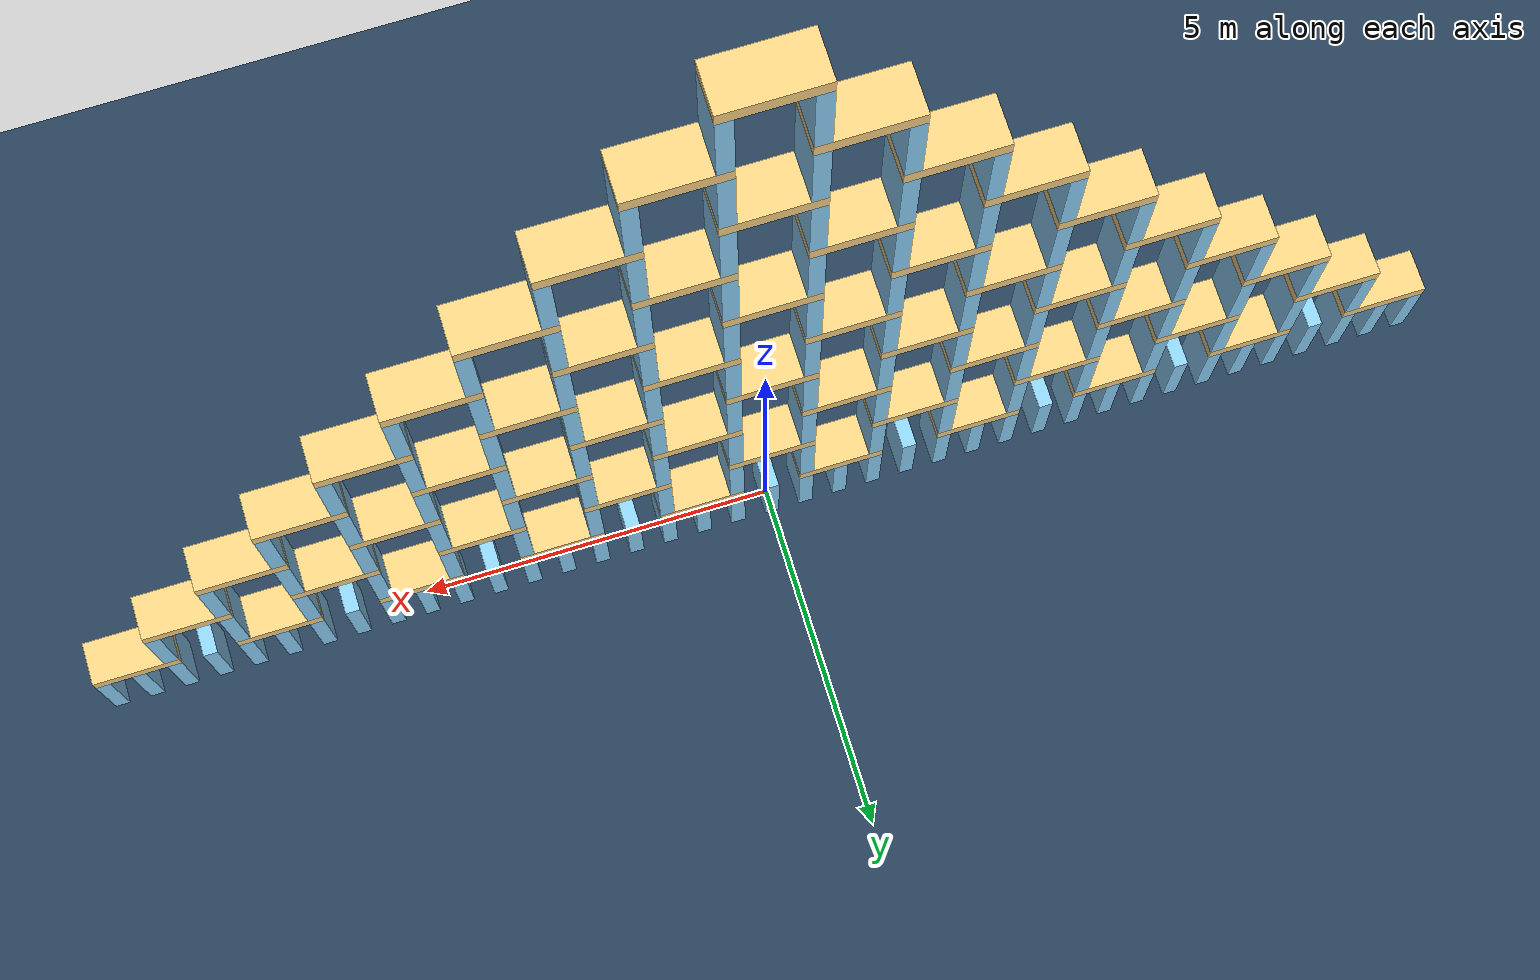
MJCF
<mujoco>
  <visual>
    <headlight diffuse="0.6 0.6 0.6" ambient="0.1 0.1 0.1" specular="0 0 0"/>
    <rgba haze="0.15 0.25 0.35 1"/>
    <global azimuth="120" elevation="-20"/>
  </visual>
  <asset>
    <texture type="skybox" builtin="gradient" rgb1="0.3 0.5 0.7" rgb2="0 0 0" width="512" height="3072"/>
    <texture type="2d" name="groundplane" builtin="checker" mark="edge" rgb1="0.2 0.3 0.4" rgb2="0.1 0.2 0.3" markrgb="0.8 0.8 0.8" width="300" height="300"/>
    <material name="groundplane" texture="groundplane" texuniform="true" texrepeat="5 5" reflectance="0.2"/>
  </asset>
  <worldbody>
    <light pos="0 0 1.5" dir="0 0 -1" directional="true"/>
    <geom name="floor" size="0 0 0.05" type="plane" material="groundplane"/>
    <body pos="0.5000000000000001 0 0.6000000000000001" euler="0 0 0">
      <geom type="box" size="0.1 0.30000000000000004  0.6000000000000001" rgba="0.5647058823529412 0.8352941176470589 1 1"/>
      <freejoint/>
    </body>
    <body pos="-0.5000000000000001 0 0.6000000000000001" euler="0 0 0">
      <geom type="box" size="0.1 0.30000000000000004  0.6000000000000001" rgba="0.5647058823529412 0.8352941176470589 1 1"/>
      <freejoint/>
    </body>
    <body pos="0 0 0.6000000000000001" euler="0 0 0">
      <geom type="box" size="0.1 0.30000000000000004  0.6000000000000001" rgba="0.5647058823529412 0.8352941176470589 1 1"/>
      <freejoint/>
    </body>
    <body pos="1.5000000000000002 0 0.6000000000000001" euler="0 0 0">
      <geom type="box" size="0.1 0.30000000000000004  0.6000000000000001" rgba="0.5647058823529412 0.8352941176470589 1 1"/>
      <freejoint/>
    </body>
    <body pos="-1.5000000000000002 0 0.6000000000000001" euler="0 0 0">
      <geom type="box" size="0.1 0.30000000000000004  0.6000000000000001" rgba="0.5647058823529412 0.8352941176470589 1 1"/>
      <freejoint/>
    </body>
    <body pos="1.0000000000000002 0 0.6000000000000001" euler="0 0 0">
      <geom type="box" size="0.1 0.30000000000000004  0.6000000000000001" rgba="0.5647058823529412 0.8352941176470589 1 1"/>
      <freejoint/>
    </body>
    <body pos="-1.0000000000000002 0 0.6000000000000001" euler="0 0 0">
      <geom type="box" size="0.1 0.30000000000000004  0.6000000000000001" rgba="0.5647058823529412 0.8352941176470589 1 1"/>
      <freejoint/>
    </body>
    <body pos="2.5000000000000004 0 0.6000000000000001" euler="0 0 0">
      <geom type="box" size="0.1 0.30000000000000004  0.6000000000000001" rgba="0.5647058823529412 0.8352941176470589 1 1"/>
      <freejoint/>
    </body>
    <body pos="-2.5000000000000004 0 0.6000000000000001" euler="0 0 0">
      <geom type="box" size="0.1 0.30000000000000004  0.6000000000000001" rgba="0.5647058823529412 0.8352941176470589 1 1"/>
      <freejoint/>
    </body>
    <body pos="2.0000000000000004 0 0.6000000000000001" euler="0 0 0">
      <geom type="box" size="0.1 0.30000000000000004  0.6000000000000001" rgba="0.5647058823529412 0.8352941176470589 1 1"/>
      <freejoint/>
    </body>
    <body pos="-2.0000000000000004 0 0.6000000000000001" euler="0 0 0">
      <geom type="box" size="0.1 0.30000000000000004  0.6000000000000001" rgba="0.5647058823529412 0.8352941176470589 1 1"/>
      <freejoint/>
    </body>
    <body pos="3.500000000000001 0 0.6000000000000001" euler="0 0 0">
      <geom type="box" size="0.1 0.30000000000000004  0.6000000000000001" rgba="0.5647058823529412 0.8352941176470589 1 1"/>
      <freejoint/>
    </body>
    <body pos="-3.500000000000001 0 0.6000000000000001" euler="0 0 0">
      <geom type="box" size="0.1 0.30000000000000004  0.6000000000000001" rgba="0.5647058823529412 0.8352941176470589 1 1"/>
      <freejoint/>
    </body>
    <body pos="3.000000000000001 0 0.6000000000000001" euler="0 0 0">
      <geom type="box" size="0.1 0.30000000000000004  0.6000000000000001" rgba="0.5647058823529412 0.8352941176470589 1 1"/>
      <freejoint/>
    </body>
    <body pos="-3.000000000000001 0 0.6000000000000001" euler="0 0 0">
      <geom type="box" size="0.1 0.30000000000000004  0.6000000000000001" rgba="0.5647058823529412 0.8352941176470589 1 1"/>
      <freejoint/>
    </body>
    <body pos="4.500000000000002 0 0.6000000000000001" euler="0 0 0">
      <geom type="box" size="0.1 0.30000000000000004  0.6000000000000001" rgba="0.5647058823529412 0.8352941176470589 1 1"/>
      <freejoint/>
    </body>
    <body pos="-4.500000000000002 0 0.6000000000000001" euler="0 0 0">
      <geom type="box" size="0.1 0.30000000000000004  0.6000000000000001" rgba="0.5647058823529412 0.8352941176470589 1 1"/>
      <freejoint/>
    </body>
    <body pos="4.000000000000001 0 0.6000000000000001" euler="0 0 0">
      <geom type="box" size="0.1 0.30000000000000004  0.6000000000000001" rgba="0.5647058823529412 0.8352941176470589 1 1"/>
      <freejoint/>
    </body>
    <body pos="-4.000000000000001 0 0.6000000000000001" euler="0 0 0">
      <geom type="box" size="0.1 0.30000000000000004  0.6000000000000001" rgba="0.5647058823529412 0.8352941176470589 1 1"/>
      <freejoint/>
    </body>
    <body pos="5.500000000000002 0 0.6000000000000001" euler="0 0 0">
      <geom type="box" size="0.1 0.30000000000000004  0.6000000000000001" rgba="0.5647058823529412 0.8352941176470589 1 1"/>
      <freejoint/>
    </body>
    <body pos="-5.500000000000002 0 0.6000000000000001" euler="0 0 0">
      <geom type="box" size="0.1 0.30000000000000004  0.6000000000000001" rgba="0.5647058823529412 0.8352941176470589 1 1"/>
      <freejoint/>
    </body>
    <body pos="5.000000000000001 0 0.6000000000000001" euler="0 0 0">
      <geom type="box" size="0.1 0.30000000000000004  0.6000000000000001" rgba="0.5647058823529412 0.8352941176470589 1 1"/>
      <freejoint/>
    </body>
    <body pos="-5.000000000000001 0 0.6000000000000001" euler="0 0 0">
      <geom type="box" size="0.1 0.30000000000000004  0.6000000000000001" rgba="0.5647058823529412 0.8352941176470589 1 1"/>
      <freejoint/>
    </body>
    <body pos="6.500000000000002 0 0.6000000000000001" euler="0 0 0">
      <geom type="box" size="0.1 0.30000000000000004  0.6000000000000001" rgba="0.5647058823529412 0.8352941176470589 1 1"/>
      <freejoint/>
    </body>
    <body pos="-6.500000000000002 0 0.6000000000000001" euler="0 0 0">
      <geom type="box" size="0.1 0.30000000000000004  0.6000000000000001" rgba="0.5647058823529412 0.8352941176470589 1 1"/>
      <freejoint/>
    </body>
    <body pos="6.000000000000001 0 0.6000000000000001" euler="0 0 0">
      <geom type="box" size="0.1 0.30000000000000004  0.6000000000000001" rgba="0.5647058823529412 0.8352941176470589 1 1"/>
      <freejoint/>
    </body>
    <body pos="-6.000000000000001 0 0.6000000000000001" euler="0 0 0">
      <geom type="box" size="0.1 0.30000000000000004  0.6000000000000001" rgba="0.5647058823529412 0.8352941176470589 1 1"/>
      <freejoint/>
    </body>
    <body pos="7.500000000000002 0 0.6000000000000001" euler="0 0 0">
      <geom type="box" size="0.1 0.30000000000000004  0.6000000000000001" rgba="0.5647058823529412 0.8352941176470589 1 1"/>
      <freejoint/>
    </body>
    <body pos="-7.500000000000002 0 0.6000000000000001" euler="0 0 0">
      <geom type="box" size="0.1 0.30000000000000004  0.6000000000000001" rgba="0.5647058823529412 0.8352941176470589 1 1"/>
      <freejoint/>
    </body>
    <body pos="7.000000000000001 0 0.6000000000000001" euler="0 0 0">
      <geom type="box" size="0.1 0.30000000000000004  0.6000000000000001" rgba="0.5647058823529412 0.8352941176470589 1 1"/>
      <freejoint/>
    </body>
    <body pos="-7.000000000000001 0 0.6000000000000001" euler="0 0 0">
      <geom type="box" size="0.1 0.30000000000000004  0.6000000000000001" rgba="0.5647058823529412 0.8352941176470589 1 1"/>
      <freejoint/>
    </body>
    <body pos="8.500000000000002 0 0.6000000000000001" euler="0 0 0">
      <geom type="box" size="0.1 0.30000000000000004  0.6000000000000001" rgba="0.5647058823529412 0.8352941176470589 1 1"/>
      <freejoint/>
    </body>
    <body pos="-8.500000000000002 0 0.6000000000000001" euler="0 0 0">
      <geom type="box" size="0.1 0.30000000000000004  0.6000000000000001" rgba="0.5647058823529412 0.8352941176470589 1 1"/>
      <freejoint/>
    </body>
    <body pos="8.000000000000002 0 0.6000000000000001" euler="0 0 0">
      <geom type="box" size="0.1 0.30000000000000004  0.6000000000000001" rgba="0.5647058823529412 0.8352941176470589 1 1"/>
      <freejoint/>
    </body>
    <body pos="-8.000000000000002 0 0.6000000000000001" euler="0 0 0">
      <geom type="box" size="0.1 0.30000000000000004  0.6000000000000001" rgba="0.5647058823529412 0.8352941176470589 1 1"/>
      <freejoint/>
    </body>
    <body pos="9.500000000000002 0 0.6000000000000001" euler="0 0 0">
      <geom type="box" size="0.1 0.30000000000000004  0.6000000000000001" rgba="0.5647058823529412 0.8352941176470589 1 1"/>
      <freejoint/>
    </body>
    <body pos="-9.500000000000002 0 0.6000000000000001" euler="0 0 0">
      <geom type="box" size="0.1 0.30000000000000004  0.6000000000000001" rgba="0.5647058823529412 0.8352941176470589 1 1"/>
      <freejoint/>
    </body>
    <body pos="9.000000000000002 0 0.6000000000000001" euler="0 0 0">
      <geom type="box" size="0.1 0.30000000000000004  0.6000000000000001" rgba="0.5647058823529412 0.8352941176470589 1 1"/>
      <freejoint/>
    </body>
    <body pos="-9.000000000000002 0 0.6000000000000001" euler="0 0 0">
      <geom type="box" size="0.1 0.30000000000000004  0.6000000000000001" rgba="0.5647058823529412 0.8352941176470589 1 1"/>
      <freejoint/>
    </body>
    <body pos="-9.0 0 1.3000000000000003" euler="0 90 0">
      <geom type="box" size="0.1 0.30000000000000004  0.6000000000000001" rgba="1.0 0.8352941176470589 0.5215686274509804 1"/>
      <freejoint/>
    </body>
    <body pos="-7.0 0 1.3000000000000003" euler="0 90 0">
      <geom type="box" size="0.1 0.30000000000000004  0.6000000000000001" rgba="1.0 0.8352941176470589 0.5215686274509804 1"/>
      <freejoint/>
    </body>
    <body pos="-5.0 0 1.3000000000000003" euler="0 90 0">
      <geom type="box" size="0.1 0.30000000000000004  0.6000000000000001" rgba="1.0 0.8352941176470589 0.5215686274509804 1"/>
      <freejoint/>
    </body>
    <body pos="-2.9999999999999996 0 1.3000000000000003" euler="0 90 0">
      <geom type="box" size="0.1 0.30000000000000004  0.6000000000000001" rgba="1.0 0.8352941176470589 0.5215686274509804 1"/>
      <freejoint/>
    </body>
    <body pos="-0.9999999999999992 0 1.3000000000000003" euler="0 90 0">
      <geom type="box" size="0.1 0.30000000000000004  0.6000000000000001" rgba="1.0 0.8352941176470589 0.5215686274509804 1"/>
      <freejoint/>
    </body>
    <body pos="1.0000000000000013 0 1.3000000000000003" euler="0 90 0">
      <geom type="box" size="0.1 0.30000000000000004  0.6000000000000001" rgba="1.0 0.8352941176470589 0.5215686274509804 1"/>
      <freejoint/>
    </body>
    <body pos="3.0000000000000018 0 1.3000000000000003" euler="0 90 0">
      <geom type="box" size="0.1 0.30000000000000004  0.6000000000000001" rgba="1.0 0.8352941176470589 0.5215686274509804 1"/>
      <freejoint/>
    </body>
    <body pos="5.000000000000002 0 1.3000000000000003" euler="0 90 0">
      <geom type="box" size="0.1 0.30000000000000004  0.6000000000000001" rgba="1.0 0.8352941176470589 0.5215686274509804 1"/>
      <freejoint/>
    </body>
    <body pos="7.000000000000002 0 1.3000000000000003" euler="0 90 0">
      <geom type="box" size="0.1 0.30000000000000004  0.6000000000000001" rgba="1.0 0.8352941176470589 0.5215686274509804 1"/>
      <freejoint/>
    </body>
    <body pos="9.000000000000002 0 1.3000000000000003" euler="0 90 0">
      <geom type="box" size="0.1 0.30000000000000004  0.6000000000000001" rgba="1.0 0.8352941176470589 0.5215686274509804 1"/>
      <freejoint/>
    </body>
    <body pos="0.5000000000000001 0 2.0" euler="0 0 0">
      <geom type="box" size="0.1 0.30000000000000004  0.6000000000000001" rgba="0.5647058823529412 0.8352941176470589 1 1"/>
      <freejoint/>
    </body>
    <body pos="-0.5000000000000001 0 2.0" euler="0 0 0">
      <geom type="box" size="0.1 0.30000000000000004  0.6000000000000001" rgba="0.5647058823529412 0.8352941176470589 1 1"/>
      <freejoint/>
    </body>
    <body pos="1.5000000000000002 0 2.0" euler="0 0 0">
      <geom type="box" size="0.1 0.30000000000000004  0.6000000000000001" rgba="0.5647058823529412 0.8352941176470589 1 1"/>
      <freejoint/>
    </body>
    <body pos="-1.5000000000000002 0 2.0" euler="0 0 0">
      <geom type="box" size="0.1 0.30000000000000004  0.6000000000000001" rgba="0.5647058823529412 0.8352941176470589 1 1"/>
      <freejoint/>
    </body>
    <body pos="2.5000000000000004 0 2.0" euler="0 0 0">
      <geom type="box" size="0.1 0.30000000000000004  0.6000000000000001" rgba="0.5647058823529412 0.8352941176470589 1 1"/>
      <freejoint/>
    </body>
    <body pos="-2.5000000000000004 0 2.0" euler="0 0 0">
      <geom type="box" size="0.1 0.30000000000000004  0.6000000000000001" rgba="0.5647058823529412 0.8352941176470589 1 1"/>
      <freejoint/>
    </body>
    <body pos="3.500000000000001 0 2.0" euler="0 0 0">
      <geom type="box" size="0.1 0.30000000000000004  0.6000000000000001" rgba="0.5647058823529412 0.8352941176470589 1 1"/>
      <freejoint/>
    </body>
    <body pos="-3.500000000000001 0 2.0" euler="0 0 0">
      <geom type="box" size="0.1 0.30000000000000004  0.6000000000000001" rgba="0.5647058823529412 0.8352941176470589 1 1"/>
      <freejoint/>
    </body>
    <body pos="4.500000000000002 0 2.0" euler="0 0 0">
      <geom type="box" size="0.1 0.30000000000000004  0.6000000000000001" rgba="0.5647058823529412 0.8352941176470589 1 1"/>
      <freejoint/>
    </body>
    <body pos="-4.500000000000002 0 2.0" euler="0 0 0">
      <geom type="box" size="0.1 0.30000000000000004  0.6000000000000001" rgba="0.5647058823529412 0.8352941176470589 1 1"/>
      <freejoint/>
    </body>
    <body pos="5.500000000000002 0 2.0" euler="0 0 0">
      <geom type="box" size="0.1 0.30000000000000004  0.6000000000000001" rgba="0.5647058823529412 0.8352941176470589 1 1"/>
      <freejoint/>
    </body>
    <body pos="-5.500000000000002 0 2.0" euler="0 0 0">
      <geom type="box" size="0.1 0.30000000000000004  0.6000000000000001" rgba="0.5647058823529412 0.8352941176470589 1 1"/>
      <freejoint/>
    </body>
    <body pos="6.500000000000002 0 2.0" euler="0 0 0">
      <geom type="box" size="0.1 0.30000000000000004  0.6000000000000001" rgba="0.5647058823529412 0.8352941176470589 1 1"/>
      <freejoint/>
    </body>
    <body pos="-6.500000000000002 0 2.0" euler="0 0 0">
      <geom type="box" size="0.1 0.30000000000000004  0.6000000000000001" rgba="0.5647058823529412 0.8352941176470589 1 1"/>
      <freejoint/>
    </body>
    <body pos="7.500000000000002 0 2.0" euler="0 0 0">
      <geom type="box" size="0.1 0.30000000000000004  0.6000000000000001" rgba="0.5647058823529412 0.8352941176470589 1 1"/>
      <freejoint/>
    </body>
    <body pos="-7.500000000000002 0 2.0" euler="0 0 0">
      <geom type="box" size="0.1 0.30000000000000004  0.6000000000000001" rgba="0.5647058823529412 0.8352941176470589 1 1"/>
      <freejoint/>
    </body>
    <body pos="8.500000000000002 0 2.0" euler="0 0 0">
      <geom type="box" size="0.1 0.30000000000000004  0.6000000000000001" rgba="0.5647058823529412 0.8352941176470589 1 1"/>
      <freejoint/>
    </body>
    <body pos="-8.500000000000002 0 2.0" euler="0 0 0">
      <geom type="box" size="0.1 0.30000000000000004  0.6000000000000001" rgba="0.5647058823529412 0.8352941176470589 1 1"/>
      <freejoint/>
    </body>
    <body pos="-8.000000000000002 0 2.7000000000000006" euler="0 90 0">
      <geom type="box" size="0.1 0.30000000000000004  0.6000000000000001" rgba="1.0 0.8352941176470589 0.5215686274509804 1"/>
      <freejoint/>
    </body>
    <body pos="-6.000000000000002 0 2.7000000000000006" euler="0 90 0">
      <geom type="box" size="0.1 0.30000000000000004  0.6000000000000001" rgba="1.0 0.8352941176470589 0.5215686274509804 1"/>
      <freejoint/>
    </body>
    <body pos="-4.000000000000002 0 2.7000000000000006" euler="0 90 0">
      <geom type="box" size="0.1 0.30000000000000004  0.6000000000000001" rgba="1.0 0.8352941176470589 0.5215686274509804 1"/>
      <freejoint/>
    </body>
    <body pos="-2.0000000000000013 0 2.7000000000000006" euler="0 90 0">
      <geom type="box" size="0.1 0.30000000000000004  0.6000000000000001" rgba="1.0 0.8352941176470589 0.5215686274509804 1"/>
      <freejoint/>
    </body>
    <body pos="-9.992007221626409e-16 0 2.7000000000000006" euler="0 90 0">
      <geom type="box" size="0.1 0.30000000000000004  0.6000000000000001" rgba="1.0 0.8352941176470589 0.5215686274509804 1"/>
      <freejoint/>
    </body>
    <body pos="1.9999999999999996 0 2.7000000000000006" euler="0 90 0">
      <geom type="box" size="0.1 0.30000000000000004  0.6000000000000001" rgba="1.0 0.8352941176470589 0.5215686274509804 1"/>
      <freejoint/>
    </body>
    <body pos="4.0 0 2.7000000000000006" euler="0 90 0">
      <geom type="box" size="0.1 0.30000000000000004  0.6000000000000001" rgba="1.0 0.8352941176470589 0.5215686274509804 1"/>
      <freejoint/>
    </body>
    <body pos="6.0 0 2.7000000000000006" euler="0 90 0">
      <geom type="box" size="0.1 0.30000000000000004  0.6000000000000001" rgba="1.0 0.8352941176470589 0.5215686274509804 1"/>
      <freejoint/>
    </body>
    <body pos="8.0 0 2.7000000000000006" euler="0 90 0">
      <geom type="box" size="0.1 0.30000000000000004  0.6000000000000001" rgba="1.0 0.8352941176470589 0.5215686274509804 1"/>
      <freejoint/>
    </body>
    <body pos="0.5000000000000001 0 3.4000000000000004" euler="0 0 0">
      <geom type="box" size="0.1 0.30000000000000004  0.6000000000000001" rgba="0.5647058823529412 0.8352941176470589 1 1"/>
      <freejoint/>
    </body>
    <body pos="-0.5000000000000001 0 3.4000000000000004" euler="0 0 0">
      <geom type="box" size="0.1 0.30000000000000004  0.6000000000000001" rgba="0.5647058823529412 0.8352941176470589 1 1"/>
      <freejoint/>
    </body>
    <body pos="1.5000000000000002 0 3.4000000000000004" euler="0 0 0">
      <geom type="box" size="0.1 0.30000000000000004  0.6000000000000001" rgba="0.5647058823529412 0.8352941176470589 1 1"/>
      <freejoint/>
    </body>
    <body pos="-1.5000000000000002 0 3.4000000000000004" euler="0 0 0">
      <geom type="box" size="0.1 0.30000000000000004  0.6000000000000001" rgba="0.5647058823529412 0.8352941176470589 1 1"/>
      <freejoint/>
    </body>
    <body pos="2.5000000000000004 0 3.4000000000000004" euler="0 0 0">
      <geom type="box" size="0.1 0.30000000000000004  0.6000000000000001" rgba="0.5647058823529412 0.8352941176470589 1 1"/>
      <freejoint/>
    </body>
    <body pos="-2.5000000000000004 0 3.4000000000000004" euler="0 0 0">
      <geom type="box" size="0.1 0.30000000000000004  0.6000000000000001" rgba="0.5647058823529412 0.8352941176470589 1 1"/>
      <freejoint/>
    </body>
    <body pos="3.500000000000001 0 3.4000000000000004" euler="0 0 0">
      <geom type="box" size="0.1 0.30000000000000004  0.6000000000000001" rgba="0.5647058823529412 0.8352941176470589 1 1"/>
      <freejoint/>
    </body>
    <body pos="-3.500000000000001 0 3.4000000000000004" euler="0 0 0">
      <geom type="box" size="0.1 0.30000000000000004  0.6000000000000001" rgba="0.5647058823529412 0.8352941176470589 1 1"/>
      <freejoint/>
    </body>
    <body pos="4.500000000000002 0 3.4000000000000004" euler="0 0 0">
      <geom type="box" size="0.1 0.30000000000000004  0.6000000000000001" rgba="0.5647058823529412 0.8352941176470589 1 1"/>
      <freejoint/>
    </body>
    <body pos="-4.500000000000002 0 3.4000000000000004" euler="0 0 0">
      <geom type="box" size="0.1 0.30000000000000004  0.6000000000000001" rgba="0.5647058823529412 0.8352941176470589 1 1"/>
      <freejoint/>
    </body>
    <body pos="5.500000000000002 0 3.4000000000000004" euler="0 0 0">
      <geom type="box" size="0.1 0.30000000000000004  0.6000000000000001" rgba="0.5647058823529412 0.8352941176470589 1 1"/>
      <freejoint/>
    </body>
    <body pos="-5.500000000000002 0 3.4000000000000004" euler="0 0 0">
      <geom type="box" size="0.1 0.30000000000000004  0.6000000000000001" rgba="0.5647058823529412 0.8352941176470589 1 1"/>
      <freejoint/>
    </body>
    <body pos="6.500000000000002 0 3.4000000000000004" euler="0 0 0">
      <geom type="box" size="0.1 0.30000000000000004  0.6000000000000001" rgba="0.5647058823529412 0.8352941176470589 1 1"/>
      <freejoint/>
    </body>
    <body pos="-6.500000000000002 0 3.4000000000000004" euler="0 0 0">
      <geom type="box" size="0.1 0.30000000000000004  0.6000000000000001" rgba="0.5647058823529412 0.8352941176470589 1 1"/>
      <freejoint/>
    </body>
    <body pos="7.500000000000002 0 3.4000000000000004" euler="0 0 0">
      <geom type="box" size="0.1 0.30000000000000004  0.6000000000000001" rgba="0.5647058823529412 0.8352941176470589 1 1"/>
      <freejoint/>
    </body>
    <body pos="-7.500000000000002 0 3.4000000000000004" euler="0 0 0">
      <geom type="box" size="0.1 0.30000000000000004  0.6000000000000001" rgba="0.5647058823529412 0.8352941176470589 1 1"/>
      <freejoint/>
    </body>
    <body pos="-7.000000000000002 0 4.1" euler="0 90 0">
      <geom type="box" size="0.1 0.30000000000000004  0.6000000000000001" rgba="1.0 0.8352941176470589 0.5215686274509804 1"/>
      <freejoint/>
    </body>
    <body pos="-5.000000000000002 0 4.1" euler="0 90 0">
      <geom type="box" size="0.1 0.30000000000000004  0.6000000000000001" rgba="1.0 0.8352941176470589 0.5215686274509804 1"/>
      <freejoint/>
    </body>
    <body pos="-3.0000000000000013 0 4.1" euler="0 90 0">
      <geom type="box" size="0.1 0.30000000000000004  0.6000000000000001" rgba="1.0 0.8352941176470589 0.5215686274509804 1"/>
      <freejoint/>
    </body>
    <body pos="-1.0000000000000009 0 4.1" euler="0 90 0">
      <geom type="box" size="0.1 0.30000000000000004  0.6000000000000001" rgba="1.0 0.8352941176470589 0.5215686274509804 1"/>
      <freejoint/>
    </body>
    <body pos="0.9999999999999994 0 4.1" euler="0 90 0">
      <geom type="box" size="0.1 0.30000000000000004  0.6000000000000001" rgba="1.0 0.8352941176470589 0.5215686274509804 1"/>
      <freejoint/>
    </body>
    <body pos="3.0 0 4.1" euler="0 90 0">
      <geom type="box" size="0.1 0.30000000000000004  0.6000000000000001" rgba="1.0 0.8352941176470589 0.5215686274509804 1"/>
      <freejoint/>
    </body>
    <body pos="5.0 0 4.1" euler="0 90 0">
      <geom type="box" size="0.1 0.30000000000000004  0.6000000000000001" rgba="1.0 0.8352941176470589 0.5215686274509804 1"/>
      <freejoint/>
    </body>
    <body pos="7.0 0 4.1" euler="0 90 0">
      <geom type="box" size="0.1 0.30000000000000004  0.6000000000000001" rgba="1.0 0.8352941176470589 0.5215686274509804 1"/>
      <freejoint/>
    </body>
    <body pos="0.5000000000000001 0 4.800000000000001" euler="0 0 0">
      <geom type="box" size="0.1 0.30000000000000004  0.6000000000000001" rgba="0.5647058823529412 0.8352941176470589 1 1"/>
      <freejoint/>
    </body>
    <body pos="-0.5000000000000001 0 4.800000000000001" euler="0 0 0">
      <geom type="box" size="0.1 0.30000000000000004  0.6000000000000001" rgba="0.5647058823529412 0.8352941176470589 1 1"/>
      <freejoint/>
    </body>
    <body pos="1.5000000000000002 0 4.800000000000001" euler="0 0 0">
      <geom type="box" size="0.1 0.30000000000000004  0.6000000000000001" rgba="0.5647058823529412 0.8352941176470589 1 1"/>
      <freejoint/>
    </body>
    <body pos="-1.5000000000000002 0 4.800000000000001" euler="0 0 0">
      <geom type="box" size="0.1 0.30000000000000004  0.6000000000000001" rgba="0.5647058823529412 0.8352941176470589 1 1"/>
      <freejoint/>
    </body>
    <body pos="2.5000000000000004 0 4.800000000000001" euler="0 0 0">
      <geom type="box" size="0.1 0.30000000000000004  0.6000000000000001" rgba="0.5647058823529412 0.8352941176470589 1 1"/>
      <freejoint/>
    </body>
    <body pos="-2.5000000000000004 0 4.800000000000001" euler="0 0 0">
      <geom type="box" size="0.1 0.30000000000000004  0.6000000000000001" rgba="0.5647058823529412 0.8352941176470589 1 1"/>
      <freejoint/>
    </body>
    <body pos="3.500000000000001 0 4.800000000000001" euler="0 0 0">
      <geom type="box" size="0.1 0.30000000000000004  0.6000000000000001" rgba="0.5647058823529412 0.8352941176470589 1 1"/>
      <freejoint/>
    </body>
    <body pos="-3.500000000000001 0 4.800000000000001" euler="0 0 0">
      <geom type="box" size="0.1 0.30000000000000004  0.6000000000000001" rgba="0.5647058823529412 0.8352941176470589 1 1"/>
      <freejoint/>
    </body>
    <body pos="4.500000000000002 0 4.800000000000001" euler="0 0 0">
      <geom type="box" size="0.1 0.30000000000000004  0.6000000000000001" rgba="0.5647058823529412 0.8352941176470589 1 1"/>
      <freejoint/>
    </body>
    <body pos="-4.500000000000002 0 4.800000000000001" euler="0 0 0">
      <geom type="box" size="0.1 0.30000000000000004  0.6000000000000001" rgba="0.5647058823529412 0.8352941176470589 1 1"/>
      <freejoint/>
    </body>
    <body pos="5.500000000000002 0 4.800000000000001" euler="0 0 0">
      <geom type="box" size="0.1 0.30000000000000004  0.6000000000000001" rgba="0.5647058823529412 0.8352941176470589 1 1"/>
      <freejoint/>
    </body>
    <body pos="-5.500000000000002 0 4.800000000000001" euler="0 0 0">
      <geom type="box" size="0.1 0.30000000000000004  0.6000000000000001" rgba="0.5647058823529412 0.8352941176470589 1 1"/>
      <freejoint/>
    </body>
    <body pos="6.500000000000002 0 4.800000000000001" euler="0 0 0">
      <geom type="box" size="0.1 0.30000000000000004  0.6000000000000001" rgba="0.5647058823529412 0.8352941176470589 1 1"/>
      <freejoint/>
    </body>
    <body pos="-6.500000000000002 0 4.800000000000001" euler="0 0 0">
      <geom type="box" size="0.1 0.30000000000000004  0.6000000000000001" rgba="0.5647058823529412 0.8352941176470589 1 1"/>
      <freejoint/>
    </body>
    <body pos="-6.000000000000001 0 5.5" euler="0 90 0">
      <geom type="box" size="0.1 0.30000000000000004  0.6000000000000001" rgba="1.0 0.8352941176470589 0.5215686274509804 1"/>
      <freejoint/>
    </body>
    <body pos="-4.000000000000001 0 5.5" euler="0 90 0">
      <geom type="box" size="0.1 0.30000000000000004  0.6000000000000001" rgba="1.0 0.8352941176470589 0.5215686274509804 1"/>
      <freejoint/>
    </body>
    <body pos="-2.0000000000000004 0 5.5" euler="0 90 0">
      <geom type="box" size="0.1 0.30000000000000004  0.6000000000000001" rgba="1.0 0.8352941176470589 0.5215686274509804 1"/>
      <freejoint/>
    </body>
    <body pos="-1.1102230246251565e-16 0 5.5" euler="0 90 0">
      <geom type="box" size="0.1 0.30000000000000004  0.6000000000000001" rgba="1.0 0.8352941176470589 0.5215686274509804 1"/>
      <freejoint/>
    </body>
    <body pos="2.0000000000000004 0 5.5" euler="0 90 0">
      <geom type="box" size="0.1 0.30000000000000004  0.6000000000000001" rgba="1.0 0.8352941176470589 0.5215686274509804 1"/>
      <freejoint/>
    </body>
    <body pos="4.0 0 5.5" euler="0 90 0">
      <geom type="box" size="0.1 0.30000000000000004  0.6000000000000001" rgba="1.0 0.8352941176470589 0.5215686274509804 1"/>
      <freejoint/>
    </body>
    <body pos="6.0 0 5.5" euler="0 90 0">
      <geom type="box" size="0.1 0.30000000000000004  0.6000000000000001" rgba="1.0 0.8352941176470589 0.5215686274509804 1"/>
      <freejoint/>
    </body>
    <body pos="0.5000000000000001 0 6.200000000000001" euler="0 0 0">
      <geom type="box" size="0.1 0.30000000000000004  0.6000000000000001" rgba="0.5647058823529412 0.8352941176470589 1 1"/>
      <freejoint/>
    </body>
    <body pos="-0.5000000000000001 0 6.200000000000001" euler="0 0 0">
      <geom type="box" size="0.1 0.30000000000000004  0.6000000000000001" rgba="0.5647058823529412 0.8352941176470589 1 1"/>
      <freejoint/>
    </body>
    <body pos="1.5000000000000002 0 6.200000000000001" euler="0 0 0">
      <geom type="box" size="0.1 0.30000000000000004  0.6000000000000001" rgba="0.5647058823529412 0.8352941176470589 1 1"/>
      <freejoint/>
    </body>
    <body pos="-1.5000000000000002 0 6.200000000000001" euler="0 0 0">
      <geom type="box" size="0.1 0.30000000000000004  0.6000000000000001" rgba="0.5647058823529412 0.8352941176470589 1 1"/>
      <freejoint/>
    </body>
    <body pos="2.5000000000000004 0 6.200000000000001" euler="0 0 0">
      <geom type="box" size="0.1 0.30000000000000004  0.6000000000000001" rgba="0.5647058823529412 0.8352941176470589 1 1"/>
      <freejoint/>
    </body>
    <body pos="-2.5000000000000004 0 6.200000000000001" euler="0 0 0">
      <geom type="box" size="0.1 0.30000000000000004  0.6000000000000001" rgba="0.5647058823529412 0.8352941176470589 1 1"/>
      <freejoint/>
    </body>
    <body pos="3.500000000000001 0 6.200000000000001" euler="0 0 0">
      <geom type="box" size="0.1 0.30000000000000004  0.6000000000000001" rgba="0.5647058823529412 0.8352941176470589 1 1"/>
      <freejoint/>
    </body>
    <body pos="-3.500000000000001 0 6.200000000000001" euler="0 0 0">
      <geom type="box" size="0.1 0.30000000000000004  0.6000000000000001" rgba="0.5647058823529412 0.8352941176470589 1 1"/>
      <freejoint/>
    </body>
    <body pos="4.500000000000002 0 6.200000000000001" euler="0 0 0">
      <geom type="box" size="0.1 0.30000000000000004  0.6000000000000001" rgba="0.5647058823529412 0.8352941176470589 1 1"/>
      <freejoint/>
    </body>
    <body pos="-4.500000000000002 0 6.200000000000001" euler="0 0 0">
      <geom type="box" size="0.1 0.30000000000000004  0.6000000000000001" rgba="0.5647058823529412 0.8352941176470589 1 1"/>
      <freejoint/>
    </body>
    <body pos="5.500000000000002 0 6.200000000000001" euler="0 0 0">
      <geom type="box" size="0.1 0.30000000000000004  0.6000000000000001" rgba="0.5647058823529412 0.8352941176470589 1 1"/>
      <freejoint/>
    </body>
    <body pos="-5.500000000000002 0 6.200000000000001" euler="0 0 0">
      <geom type="box" size="0.1 0.30000000000000004  0.6000000000000001" rgba="0.5647058823529412 0.8352941176470589 1 1"/>
      <freejoint/>
    </body>
    <body pos="-5.000000000000001 0 6.9" euler="0 90 0">
      <geom type="box" size="0.1 0.30000000000000004  0.6000000000000001" rgba="1.0 0.8352941176470589 0.5215686274509804 1"/>
      <freejoint/>
    </body>
    <body pos="-3.0000000000000004 0 6.9" euler="0 90 0">
      <geom type="box" size="0.1 0.30000000000000004  0.6000000000000001" rgba="1.0 0.8352941176470589 0.5215686274509804 1"/>
      <freejoint/>
    </body>
    <body pos="-1.0 0 6.9" euler="0 90 0">
      <geom type="box" size="0.1 0.30000000000000004  0.6000000000000001" rgba="1.0 0.8352941176470589 0.5215686274509804 1"/>
      <freejoint/>
    </body>
    <body pos="1.0000000000000004 0 6.9" euler="0 90 0">
      <geom type="box" size="0.1 0.30000000000000004  0.6000000000000001" rgba="1.0 0.8352941176470589 0.5215686274509804 1"/>
      <freejoint/>
    </body>
    <body pos="3.000000000000001 0 6.9" euler="0 90 0">
      <geom type="box" size="0.1 0.30000000000000004  0.6000000000000001" rgba="1.0 0.8352941176470589 0.5215686274509804 1"/>
      <freejoint/>
    </body>
    <body pos="5.000000000000001 0 6.9" euler="0 90 0">
      <geom type="box" size="0.1 0.30000000000000004  0.6000000000000001" rgba="1.0 0.8352941176470589 0.5215686274509804 1"/>
      <freejoint/>
    </body>
    <body pos="0.5000000000000001 0 7.600000000000001" euler="0 0 0">
      <geom type="box" size="0.1 0.30000000000000004  0.6000000000000001" rgba="0.5647058823529412 0.8352941176470589 1 1"/>
      <freejoint/>
    </body>
    <body pos="-0.5000000000000001 0 7.600000000000001" euler="0 0 0">
      <geom type="box" size="0.1 0.30000000000000004  0.6000000000000001" rgba="0.5647058823529412 0.8352941176470589 1 1"/>
      <freejoint/>
    </body>
    <body pos="1.5000000000000002 0 7.600000000000001" euler="0 0 0">
      <geom type="box" size="0.1 0.30000000000000004  0.6000000000000001" rgba="0.5647058823529412 0.8352941176470589 1 1"/>
      <freejoint/>
    </body>
    <body pos="-1.5000000000000002 0 7.600000000000001" euler="0 0 0">
      <geom type="box" size="0.1 0.30000000000000004  0.6000000000000001" rgba="0.5647058823529412 0.8352941176470589 1 1"/>
      <freejoint/>
    </body>
    <body pos="2.5000000000000004 0 7.600000000000001" euler="0 0 0">
      <geom type="box" size="0.1 0.30000000000000004  0.6000000000000001" rgba="0.5647058823529412 0.8352941176470589 1 1"/>
      <freejoint/>
    </body>
    <body pos="-2.5000000000000004 0 7.600000000000001" euler="0 0 0">
      <geom type="box" size="0.1 0.30000000000000004  0.6000000000000001" rgba="0.5647058823529412 0.8352941176470589 1 1"/>
      <freejoint/>
    </body>
    <body pos="3.500000000000001 0 7.600000000000001" euler="0 0 0">
      <geom type="box" size="0.1 0.30000000000000004  0.6000000000000001" rgba="0.5647058823529412 0.8352941176470589 1 1"/>
      <freejoint/>
    </body>
    <body pos="-3.500000000000001 0 7.600000000000001" euler="0 0 0">
      <geom type="box" size="0.1 0.30000000000000004  0.6000000000000001" rgba="0.5647058823529412 0.8352941176470589 1 1"/>
      <freejoint/>
    </body>
    <body pos="4.500000000000002 0 7.600000000000001" euler="0 0 0">
      <geom type="box" size="0.1 0.30000000000000004  0.6000000000000001" rgba="0.5647058823529412 0.8352941176470589 1 1"/>
      <freejoint/>
    </body>
    <body pos="-4.500000000000002 0 7.600000000000001" euler="0 0 0">
      <geom type="box" size="0.1 0.30000000000000004  0.6000000000000001" rgba="0.5647058823529412 0.8352941176470589 1 1"/>
      <freejoint/>
    </body>
    <body pos="-4.000000000000001 0 8.3" euler="0 90 0">
      <geom type="box" size="0.1 0.30000000000000004  0.6000000000000001" rgba="1.0 0.8352941176470589 0.5215686274509804 1"/>
      <freejoint/>
    </body>
    <body pos="-2.0000000000000004 0 8.3" euler="0 90 0">
      <geom type="box" size="0.1 0.30000000000000004  0.6000000000000001" rgba="1.0 0.8352941176470589 0.5215686274509804 1"/>
      <freejoint/>
    </body>
    <body pos="-1.1102230246251565e-16 0 8.3" euler="0 90 0">
      <geom type="box" size="0.1 0.30000000000000004  0.6000000000000001" rgba="1.0 0.8352941176470589 0.5215686274509804 1"/>
      <freejoint/>
    </body>
    <body pos="2.0000000000000004 0 8.3" euler="0 90 0">
      <geom type="box" size="0.1 0.30000000000000004  0.6000000000000001" rgba="1.0 0.8352941176470589 0.5215686274509804 1"/>
      <freejoint/>
    </body>
    <body pos="4.0 0 8.3" euler="0 90 0">
      <geom type="box" size="0.1 0.30000000000000004  0.6000000000000001" rgba="1.0 0.8352941176470589 0.5215686274509804 1"/>
      <freejoint/>
    </body>
    <body pos="0.5000000000000001 0 9.0" euler="0 0 0">
      <geom type="box" size="0.1 0.30000000000000004  0.6000000000000001" rgba="0.5647058823529412 0.8352941176470589 1 1"/>
      <freejoint/>
    </body>
    <body pos="-0.5000000000000001 0 9.0" euler="0 0 0">
      <geom type="box" size="0.1 0.30000000000000004  0.6000000000000001" rgba="0.5647058823529412 0.8352941176470589 1 1"/>
      <freejoint/>
    </body>
    <body pos="1.5000000000000002 0 9.0" euler="0 0 0">
      <geom type="box" size="0.1 0.30000000000000004  0.6000000000000001" rgba="0.5647058823529412 0.8352941176470589 1 1"/>
      <freejoint/>
    </body>
    <body pos="-1.5000000000000002 0 9.0" euler="0 0 0">
      <geom type="box" size="0.1 0.30000000000000004  0.6000000000000001" rgba="0.5647058823529412 0.8352941176470589 1 1"/>
      <freejoint/>
    </body>
    <body pos="2.5000000000000004 0 9.0" euler="0 0 0">
      <geom type="box" size="0.1 0.30000000000000004  0.6000000000000001" rgba="0.5647058823529412 0.8352941176470589 1 1"/>
      <freejoint/>
    </body>
    <body pos="-2.5000000000000004 0 9.0" euler="0 0 0">
      <geom type="box" size="0.1 0.30000000000000004  0.6000000000000001" rgba="0.5647058823529412 0.8352941176470589 1 1"/>
      <freejoint/>
    </body>
    <body pos="3.500000000000001 0 9.0" euler="0 0 0">
      <geom type="box" size="0.1 0.30000000000000004  0.6000000000000001" rgba="0.5647058823529412 0.8352941176470589 1 1"/>
      <freejoint/>
    </body>
    <body pos="-3.500000000000001 0 9.0" euler="0 0 0">
      <geom type="box" size="0.1 0.30000000000000004  0.6000000000000001" rgba="0.5647058823529412 0.8352941176470589 1 1"/>
      <freejoint/>
    </body>
    <body pos="-3.000000000000001 0 9.700000000000001" euler="0 90 0">
      <geom type="box" size="0.1 0.30000000000000004  0.6000000000000001" rgba="1.0 0.8352941176470589 0.5215686274509804 1"/>
      <freejoint/>
    </body>
    <body pos="-1.0000000000000004 0 9.700000000000001" euler="0 90 0">
      <geom type="box" size="0.1 0.30000000000000004  0.6000000000000001" rgba="1.0 0.8352941176470589 0.5215686274509804 1"/>
      <freejoint/>
    </body>
    <body pos="0.9999999999999999 0 9.700000000000001" euler="0 90 0">
      <geom type="box" size="0.1 0.30000000000000004  0.6000000000000001" rgba="1.0 0.8352941176470589 0.5215686274509804 1"/>
      <freejoint/>
    </body>
    <body pos="3.0000000000000004 0 9.700000000000001" euler="0 90 0">
      <geom type="box" size="0.1 0.30000000000000004  0.6000000000000001" rgba="1.0 0.8352941176470589 0.5215686274509804 1"/>
      <freejoint/>
    </body>
    <body pos="0.5000000000000001 0 10.4" euler="0 0 0">
      <geom type="box" size="0.1 0.30000000000000004  0.6000000000000001" rgba="0.5647058823529412 0.8352941176470589 1 1"/>
      <freejoint/>
    </body>
    <body pos="-0.5000000000000001 0 10.4" euler="0 0 0">
      <geom type="box" size="0.1 0.30000000000000004  0.6000000000000001" rgba="0.5647058823529412 0.8352941176470589 1 1"/>
      <freejoint/>
    </body>
    <body pos="1.5000000000000002 0 10.4" euler="0 0 0">
      <geom type="box" size="0.1 0.30000000000000004  0.6000000000000001" rgba="0.5647058823529412 0.8352941176470589 1 1"/>
      <freejoint/>
    </body>
    <body pos="-1.5000000000000002 0 10.4" euler="0 0 0">
      <geom type="box" size="0.1 0.30000000000000004  0.6000000000000001" rgba="0.5647058823529412 0.8352941176470589 1 1"/>
      <freejoint/>
    </body>
    <body pos="2.5000000000000004 0 10.4" euler="0 0 0">
      <geom type="box" size="0.1 0.30000000000000004  0.6000000000000001" rgba="0.5647058823529412 0.8352941176470589 1 1"/>
      <freejoint/>
    </body>
    <body pos="-2.5000000000000004 0 10.4" euler="0 0 0">
      <geom type="box" size="0.1 0.30000000000000004  0.6000000000000001" rgba="0.5647058823529412 0.8352941176470589 1 1"/>
      <freejoint/>
    </body>
    <body pos="-2.000000000000001 0 11.1" euler="0 90 0">
      <geom type="box" size="0.1 0.30000000000000004  0.6000000000000001" rgba="1.0 0.8352941176470589 0.5215686274509804 1"/>
      <freejoint/>
    </body>
    <body pos="-5.551115123125783e-16 0 11.1" euler="0 90 0">
      <geom type="box" size="0.1 0.30000000000000004  0.6000000000000001" rgba="1.0 0.8352941176470589 0.5215686274509804 1"/>
      <freejoint/>
    </body>
    <body pos="2.0 0 11.1" euler="0 90 0">
      <geom type="box" size="0.1 0.30000000000000004  0.6000000000000001" rgba="1.0 0.8352941176470589 0.5215686274509804 1"/>
      <freejoint/>
    </body>
    <body pos="0.5000000000000001 0 11.8" euler="0 0 0">
      <geom type="box" size="0.1 0.30000000000000004  0.6000000000000001" rgba="0.5647058823529412 0.8352941176470589 1 1"/>
      <freejoint/>
    </body>
    <body pos="-0.5000000000000001 0 11.8" euler="0 0 0">
      <geom type="box" size="0.1 0.30000000000000004  0.6000000000000001" rgba="0.5647058823529412 0.8352941176470589 1 1"/>
      <freejoint/>
    </body>
    <body pos="1.5000000000000002 0 11.8" euler="0 0 0">
      <geom type="box" size="0.1 0.30000000000000004  0.6000000000000001" rgba="0.5647058823529412 0.8352941176470589 1 1"/>
      <freejoint/>
    </body>
    <body pos="-1.5000000000000002 0 11.8" euler="0 0 0">
      <geom type="box" size="0.1 0.30000000000000004  0.6000000000000001" rgba="0.5647058823529412 0.8352941176470589 1 1"/>
      <freejoint/>
    </body>
    <body pos="-1.0000000000000002 0 12.500000000000002" euler="0 90 0">
      <geom type="box" size="0.1 0.30000000000000004  0.6000000000000001" rgba="1.0 0.8352941176470589 0.5215686274509804 1"/>
      <freejoint/>
    </body>
    <body pos="1.0 0 12.500000000000002" euler="0 90 0">
      <geom type="box" size="0.1 0.30000000000000004  0.6000000000000001" rgba="1.0 0.8352941176470589 0.5215686274509804 1"/>
      <freejoint/>
    </body>
    <body pos="0.5000000000000001 0 13.200000000000001" euler="0 0 0">
      <geom type="box" size="0.1 0.30000000000000004  0.6000000000000001" rgba="0.5647058823529412 0.8352941176470589 1 1"/>
      <freejoint/>
    </body>
    <body pos="-0.5000000000000001 0 13.200000000000001" euler="0 0 0">
      <geom type="box" size="0.1 0.30000000000000004  0.6000000000000001" rgba="0.5647058823529412 0.8352941176470589 1 1"/>
      <freejoint/>
    </body>
    <body pos="-5.551115123125783e-17 0 13.9" euler="0 90 0">
      <geom type="box" size="0.1 0.30000000000000004  0.6000000000000001" rgba="1.0 0.8352941176470589 0.5215686274509804 1"/>
      <freejoint/>
    </body>
  </worldbody>
</mujoco>
